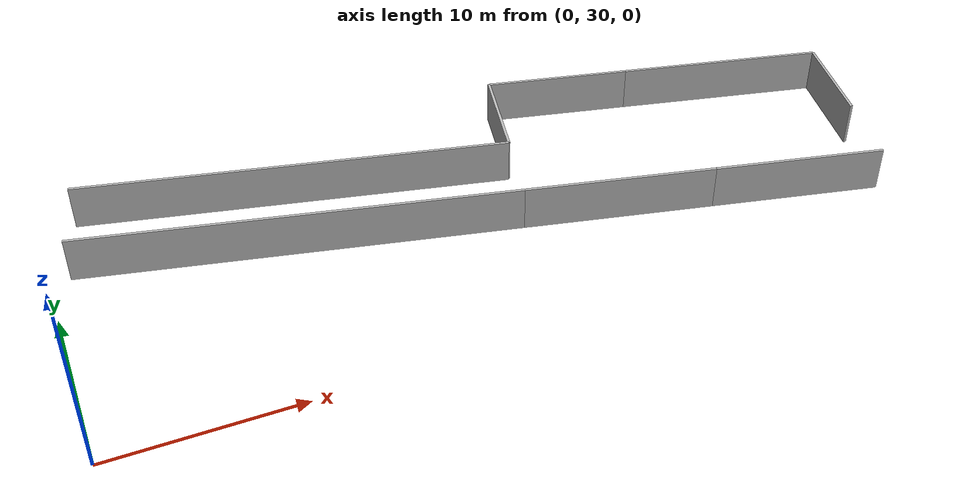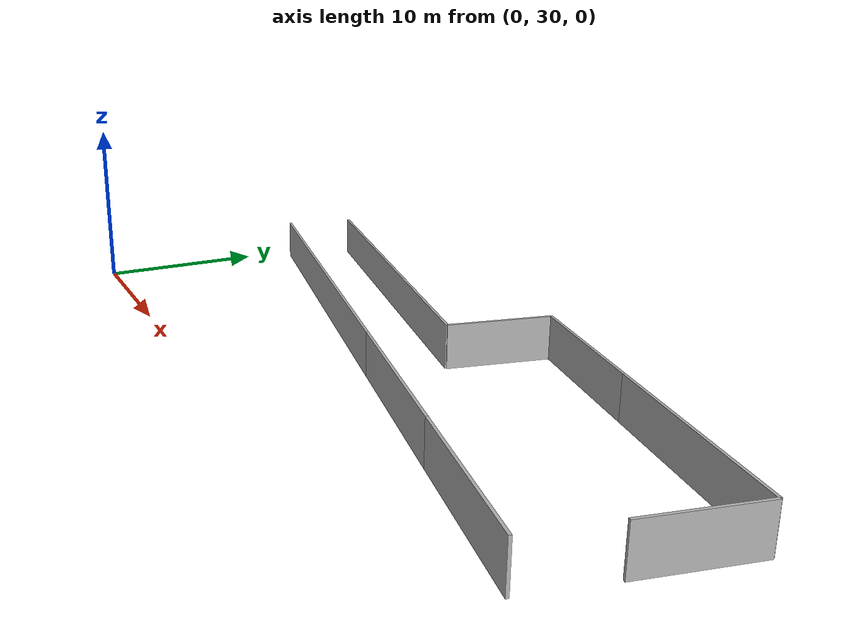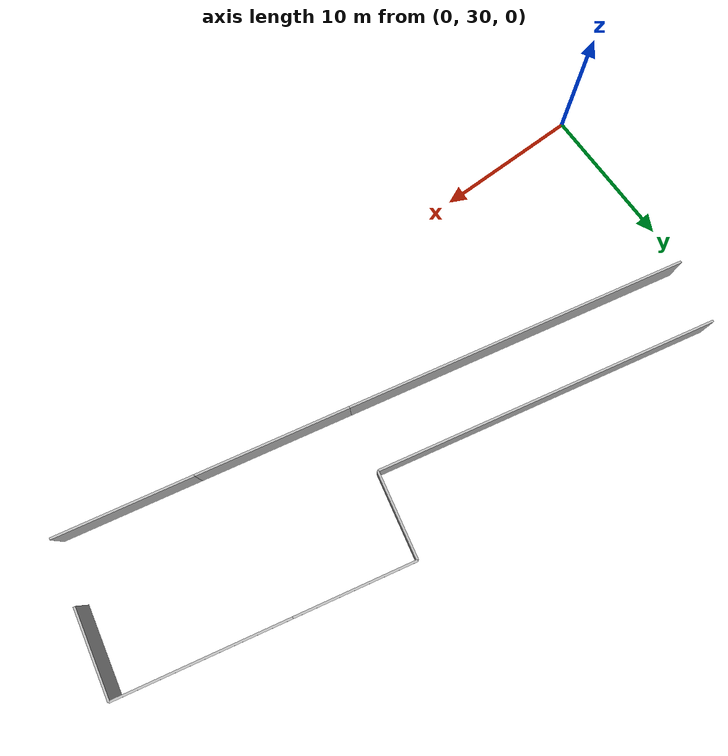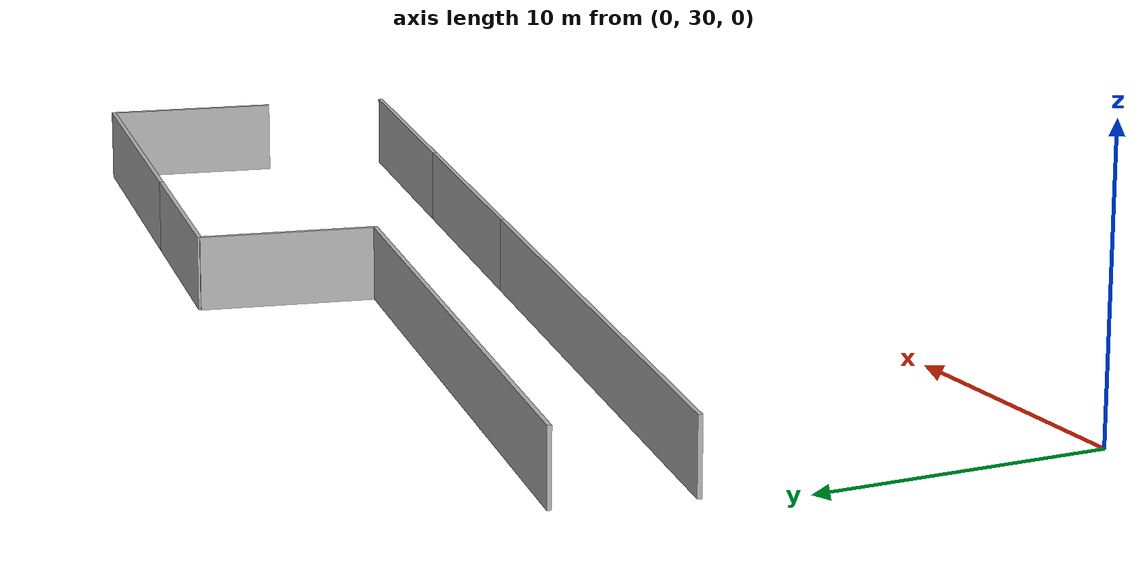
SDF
<?xml version="1.0" ?>
<sdf version="1.6">
  <model name="sps_1805">
    <pose frame="">0 0 0 0 -0 0</pose>
    <static>1</static>
    <self_collide>0</self_collide>
    <allow_auto_disable>0</allow_auto_disable>
    <link name="Wall30">
      <kinematic>0</kinematic>
      <gravity>1</gravity>
      <self_collide>0</self_collide>
      <collision name="collision">
        <geometry>
          <box>
            <size>5.98038 0.15 2.5</size>
          </box>
        </geometry>
        <pose frame="">0 0 0 0 -0 0</pose>
      </collision>
      <visual name="visual">
        <geometry>
          <box>
            <size>5.98038 0.15 2.5</size>
          </box>
        </geometry>
        <pose frame="">0 0 0 0 -0 0</pose>
        <cast_shadows>1</cast_shadows>
        <transparency>0.0</transparency>
      </visual>
      <pose frame="">25.7827 45.2165 1.25 0 0 -1.78506</pose>
    </link>
    <link name="Wall198">
      <kinematic>0</kinematic>
      <gravity>1</gravity>
      <self_collide>0</self_collide>
      <collision name="collision">
        <geometry>
          <box>
            <size>5.98036 0.15 2.5</size>
          </box>
        </geometry>
        <pose frame="">0 0 0 0 -0 0</pose>
      </collision>
      <visual name="visual">
        <geometry>
          <box>
            <size>5.98036 0.15 2.5</size>
          </box>
        </geometry>
        <pose frame="">0 0 0 0 -0 0</pose>
        <cast_shadows>1</cast_shadows>
        <transparency>0.0</transparency>
      </visual>
      <pose frame="">45.3254 40.9635 1.25 0 0 -1.78509</pose>
    </link>
    <link name="Wall288">
      <kinematic>0</kinematic>
      <gravity>1</gravity>
      <self_collide>0</self_collide>
      <collision name="collision">
        <geometry>
          <box>
            <size>9.50174 0.15 2.5</size>
          </box>
        </geometry>
        <pose frame="">0 0 0 0 -0 0</pose>
      </collision>
      <visual name="visual">
        <geometry>
          <box>
            <size>9.50174 0.15 2.5</size>
          </box>
        </geometry>
        <pose frame="">0 0 0 0 -0 0</pose>
        <cast_shadows>1</cast_shadows>
        <transparency>0.0</transparency>
      </visual>
      <pose frame="">39.1117 34.7528 1.25 0 -0 2.92731</pose>
    </link>
    <link name="Wall289">
      <kinematic>0</kinematic>
      <gravity>1</gravity>
      <self_collide>0</self_collide>
      <collision name="collision">
        <geometry>
          <box>
            <size>10.4985 0.15 2.5</size>
          </box>
        </geometry>
        <pose frame="">0 0 0 0 -0 0</pose>
      </collision>
      <visual name="visual">
        <geometry>
          <box>
            <size>10.4985 0.15 2.5</size>
          </box>
        </geometry>
        <pose frame="">0 0 0 0 -0 0</pose>
        <cast_shadows>1</cast_shadows>
        <transparency>0.0</transparency>
      </visual>
      <pose frame="">29.3403 36.8793 1.25 0 -0 2.92731</pose>
    </link>
    <link name="Wall356">
      <kinematic>0</kinematic>
      <gravity>1</gravity>
      <self_collide>0</self_collide>
      <collision name="collision">
        <geometry>
          <box>
            <size>23.6493 0.15 2.5</size>
          </box>
        </geometry>
        <pose frame="">0 0 0 0 -0 0</pose>
      </collision>
      <visual name="visual">
        <geometry>
          <box>
            <size>23.6493 0.15 2.5</size>
          </box>
        </geometry>
        <pose frame="">0 0 0 0 -0 0</pose>
        <cast_shadows>1</cast_shadows>
        <transparency>0.0</transparency>
      </visual>
      <pose frame="">13.5927 44.8092 1.25 0 -0 2.92731</pose>
    </link>
    <link name="Wall436">
      <kinematic>0</kinematic>
      <gravity>1</gravity>
      <self_collide>0</self_collide>
      <collision name="collision">
        <geometry>
          <box>
            <size>23.6497 0.15 2.5</size>
          </box>
        </geometry>
        <pose frame="">0 0 0 0 -0 0</pose>
      </collision>
      <visual name="visual">
        <geometry>
          <box>
            <size>23.6497 0.15 2.5</size>
          </box>
        </geometry>
        <pose frame="">0 0 0 0 -0 0</pose>
        <cast_shadows>1</cast_shadows>
        <transparency>0.0</transparency>
      </visual>
      <pose frame="">12.6567 40.5101 1.25 0 -0 2.9273</pose>
    </link>
    <link name="Wall437">
      <kinematic>0</kinematic>
      <gravity>1</gravity>
      <self_collide>0</self_collide>
      <collision name="collision">
        <geometry>
          <box>
            <size>11.7608 0.15 2.5</size>
          </box>
        </geometry>
        <pose frame="">0 0 0 0 -0 0</pose>
      </collision>
      <visual name="visual">
        <geometry>
          <box>
            <size>11.7608 0.15 2.5</size>
          </box>
        </geometry>
        <pose frame="">0 0 0 0 -0 0</pose>
        <cast_shadows>1</cast_shadows>
        <transparency>0.0</transparency>
      </visual>
      <pose frame="">40.2154 45.1357 1.25 0 -0 2.92731</pose>
    </link>
    <link name="Wall438">
      <kinematic>0</kinematic>
      <gravity>1</gravity>
      <self_collide>0</self_collide>
      <collision name="collision">
        <geometry>
          <box>
            <size>8.23941 0.15 2.5</size>
          </box>
        </geometry>
        <pose frame="">0 0 0 0 -0 0</pose>
      </collision>
      <visual name="visual">
        <geometry>
          <box>
            <size>8.23941 0.15 2.5</size>
          </box>
        </geometry>
        <pose frame="">0 0 0 0 -0 0</pose>
        <cast_shadows>1</cast_shadows>
        <transparency>0.0</transparency>
      </visual>
      <pose frame="">30.444 47.2623 1.25 0 -0 2.92731</pose>
    </link>
  </model>
</sdf>
